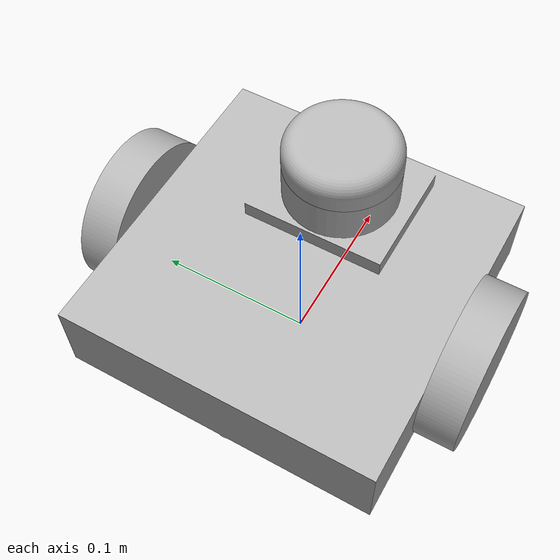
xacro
<?xml version="1.0" ?>
<robot name="urdf_test" xmlns:xacro="http://www.ros.org/wiki/xacro">

<xacro:include filename="$(find urdf_test_description)/urdf/materials.xacro" />
<xacro:include filename="$(find urdf_test_description)/urdf/urdf_test.trans" />
<xacro:include filename="$(find urdf_test_description)/urdf/urdf_test.gazebo" />
<link name="base_link">
  <inertial>
    <origin xyz="0.003877582830871789 -6.666318854655759e-17 0.052918293473761084" rpy="0 0 0"/>
    <mass value="2.3138752403503795"/>
    <inertia ixx="0.007906" iyy="0.008409" izz="0.014804" ixy="0.0" iyz="0.0" ixz="-0.000337"/>
  </inertial>
  <visual>
    <origin xyz="0 0 0" rpy="0 0 0"/>
    <geometry>
      <mesh filename="package://urdf_test_description/meshes/base_link.stl" scale="0.001 0.001 0.001"/>
    </geometry>
    <material name="silver"/>
  </visual>
  <collision>
    <origin xyz="0 0 0" rpy="0 0 0"/>
    <geometry>
      <mesh filename="package://urdf_test_description/meshes/base_link.stl" scale="0.001 0.001 0.001"/>
    </geometry>
  </collision>
</link>

<link name="left_wheel_1">
  <inertial>
    <origin xyz="-5.790023100122029e-18 0.012499999999999997 0.0" rpy="0 0 0"/>
    <mass value="0.1826050729899067"/>
    <inertia ixx="0.000124" iyy="0.000228" izz="0.000124" ixy="0.0" iyz="-0.0" ixz="0.0"/>
  </inertial>
  <visual>
    <origin xyz="-0.0 -0.1 -0.05" rpy="0 0 0"/>
    <geometry>
      <mesh filename="package://urdf_test_description/meshes/left_wheel_1.stl" scale="0.001 0.001 0.001"/>
    </geometry>
    <material name="silver"/>
  </visual>
  <collision>
    <origin xyz="-0.0 -0.1 -0.05" rpy="0 0 0"/>
    <geometry>
      <mesh filename="package://urdf_test_description/meshes/left_wheel_1.stl" scale="0.001 0.001 0.001"/>
    </geometry>
  </collision>
</link>

<link name="right_wheel_1">
  <inertial>
    <origin xyz="-5.790023100122029e-18 -0.012499999999999997 0.0" rpy="0 0 0"/>
    <mass value="0.1826050729899067"/>
    <inertia ixx="0.000124" iyy="0.000228" izz="0.000124" ixy="-0.0" iyz="0.0" ixz="0.0"/>
  </inertial>
  <visual>
    <origin xyz="-0.0 0.1 -0.05" rpy="0 0 0"/>
    <geometry>
      <mesh filename="package://urdf_test_description/meshes/right_wheel_1.stl" scale="0.001 0.001 0.001"/>
    </geometry>
    <material name="silver"/>
  </visual>
  <collision>
    <origin xyz="-0.0 0.1 -0.05" rpy="0 0 0"/>
    <geometry>
      <mesh filename="package://urdf_test_description/meshes/right_wheel_1.stl" scale="0.001 0.001 0.001"/>
    </geometry>
  </collision>
</link>

<link name="lidar_1">
  <inertial>
    <origin xyz="7.771561172376096e-16 -4.066735773436256e-16 0.00954367264812847" rpy="0 0 0"/>
    <mass value="0.08148971322975607"/>
    <inertia ixx="2.8e-05" iyy="2.8e-05" izz="5e-05" ixy="0.0" iyz="0.0" ixz="0.0"/>
  </inertial>
  <visual>
    <origin xyz="-0.05 0.0 -0.11" rpy="0 0 0"/>
    <geometry>
      <mesh filename="package://urdf_test_description/meshes/lidar_1.stl" scale="0.001 0.001 0.001"/>
    </geometry>
    <material name="silver"/>
  </visual>
  <collision>
    <origin xyz="-0.05 0.0 -0.11" rpy="0 0 0"/>
    <geometry>
      <mesh filename="package://urdf_test_description/meshes/lidar_1.stl" scale="0.001 0.001 0.001"/>
    </geometry>
  </collision>
</link>

<joint name="Revolute 1" type="continuous">
  <origin xyz="0.0 0.1 0.05" rpy="0 0 0"/>
  <parent link="base_link"/>
  <child link="left_wheel_1"/>
  <axis xyz="0.0 1.0 0.0"/>
</joint>

<joint name="Revolute 2" type="continuous">
  <origin xyz="0.0 -0.1 0.05" rpy="0 0 0"/>
  <parent link="base_link"/>
  <child link="right_wheel_1"/>
  <axis xyz="0.0 -1.0 0.0"/>
</joint>

<joint name="Rigid 3" type="fixed">
  <origin xyz="0.05 0.0 0.11" rpy="0 0 0"/>
  <parent link="base_link"/>
  <child link="lidar_1"/>
</joint>

</robot>

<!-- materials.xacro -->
<robot name="urdf_test" xmlns:xacro="http://www.ros.org/wiki/xacro" >

<material name="silver">
  <color rgba="0.700 0.700 0.700 1.000"/>
</material>

</robot>

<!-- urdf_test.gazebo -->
<robot name="urdf_test" xmlns:xacro="http://www.ros.org/wiki/xacro" >

<xacro:property name="body_color" value="Gazebo/Silver" />

<gazebo>
  <plugin name="control" filename="libgazebo_ros_control.so"/>
</gazebo>
<gazebo reference="base_link">
  <material>${body_color}</material>
  <mu1>0.2</mu1>
  <mu2>0.2</mu2>
  <selfCollide>true</selfCollide>
  <gravity>true</gravity>
</gazebo>

<gazebo reference="left_wheel_1">
  <material>${body_color}</material>
  <mu1>0.2</mu1>
  <mu2>0.2</mu2>
  <selfCollide>true</selfCollide>
</gazebo>

<gazebo reference="right_wheel_1">
  <material>${body_color}</material>
  <mu1>0.2</mu1>
  <mu2>0.2</mu2>
  <selfCollide>true</selfCollide>
</gazebo>

<gazebo reference="lidar_1">
  <material>${body_color}</material>
  <mu1>0.2</mu1>
  <mu2>0.2</mu2>
  <selfCollide>true</selfCollide>
</gazebo>

</robot>
